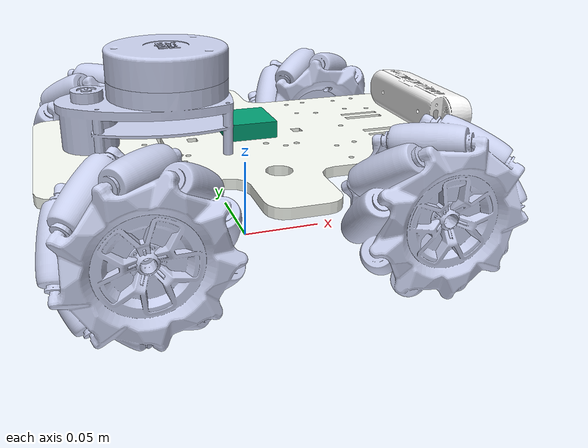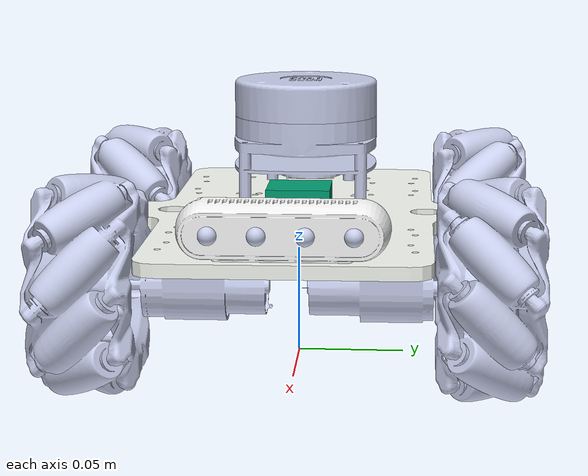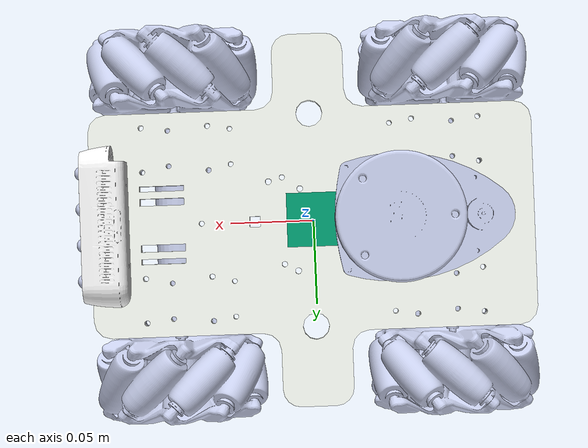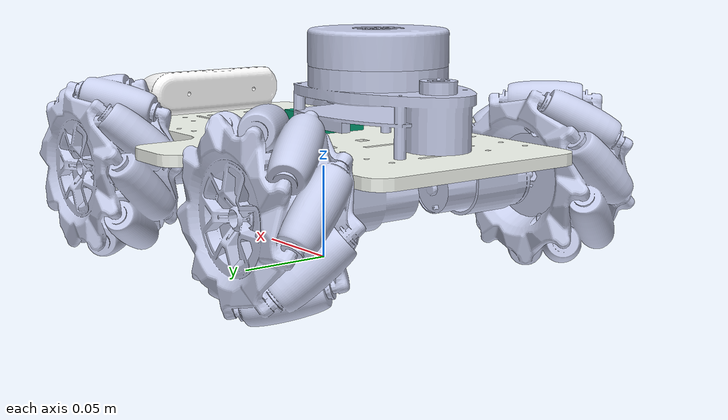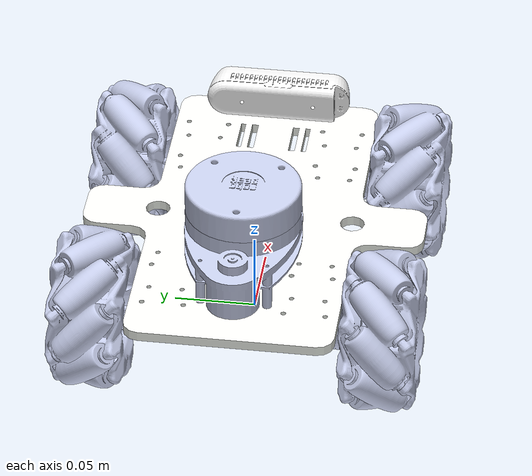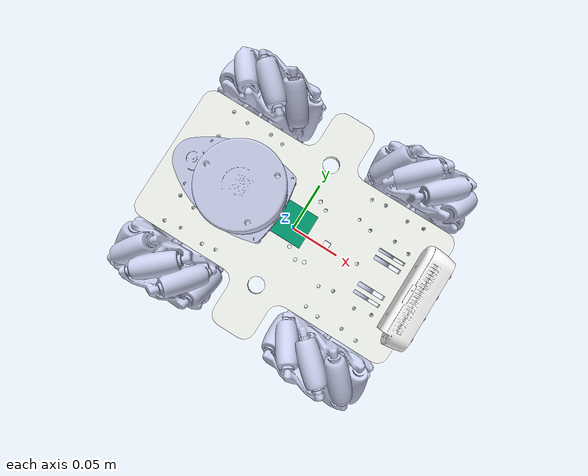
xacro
<?xml version="1.0"?>
<robot
  name="ros_gz_sim_demos" xmlns:xacro="http://www.ros.org/wiki/xacro" xmlns:gz="https://gazebosim.org/schema">
  <link
    name="base_link">
    <inertial>
      <origin
        xyz="2.5995E-16 -2.2595E-17 0.065"
        rpy="0 0 0" />
      <mass
        value="0.20049" />
      <inertia
        ixx="0.00037919"
        ixy="-2.2555E-08"
        ixz="3.6353E-21"
        iyy="0.00094675"
        iyz="-1.0379E-21"
        izz="0.0013247" />
    </inertial>
    <visual>
      <origin
        xyz="0 0 0"
        rpy="0 0 0" />
      <geometry>
        <mesh
          filename="file://$(find ros_gz_sim_demos)/meshes/base_link.STL" />
      </geometry>
      <material
        name="">
        <color
          rgba="0.98431 1 0.96863 1" />
      </material>
    </visual>
    <collision>
      <origin
        xyz="0 0 0"
        rpy="0 0 0" />
      <geometry>
        <mesh
          filename="file://$(find ros_gz_sim_demos)/meshes/base_link.STL" />
      </geometry>
    </collision>
  </link>
  <link
    name="FR_motor_link">
    <inertial>
      <origin
        xyz="-1.6207E-06 -0.00034658 0.012253"
        rpy="0 0 0" />
      <mass
        value="0.032794" />
      <inertia
        ixx="8.5969E-06"
        ixy="4.7838E-09"
        ixz="8.3408E-10"
        iyy="9.2163E-06"
        iyz="3.0417E-10"
        izz="3.9326E-06" />
    </inertial>
    <visual>
      <origin
        xyz="0 0 0"
        rpy="0 0 0" />
      <geometry>
        <mesh
          filename="file://$(find ros_gz_sim_demos)/meshes/FR_motor_link.STL" />
      </geometry>
      <material
        name="">
        <color
          rgba="0.79216 0.81961 0.93333 1" />
      </material>
    </visual>
    <collision>
      <origin
        xyz="0 0 0"
        rpy="0 0 0" />
      <geometry>
        <mesh
          filename="file://$(find ros_gz_sim_demos)/meshes/FR_motor_link.STL" />
      </geometry>
    </collision>
  </link>
  <joint
    name="FR_motor_joint"
    type="fixed">
    <origin
      xyz="0.078173 -0.0265 0.0485"
      rpy="-1.5708 0 3.1416" />
    <parent
      link="base_link" />
    <child
      link="FR_motor_link" />
    <axis
      xyz="0 0 0" />
  </joint>
  <link
    name="FR_wheel_link">
    <inertial>
      <origin
        xyz="-2.15121149793607E-06 -0.000778884301154747 -7.8700501722484E-07"
        rpy="0 0 0" />
      <mass
        value="1.02887407764315" />
      <inertia
        ixx="0.000177552284416299"
        ixy="4.58145230572043E-09"
        ixz="-2.28833532776001E-08"
        iyy="0.000223652024220651"
        iyz="-1.27688365680031E-08"
        izz="0.000177604921899001" />
    </inertial>
    <visual>
      <origin
        xyz="0 0 0"
        rpy="0 0 0" />
      <geometry>
        <mesh
          filename="file://$(find ros_gz_sim_demos)/meshes/FR_wheel_link.STL" />
      </geometry>
      <material
        name="">
        <color
          rgba="0.792156862745098 0.819607843137255 0.933333333333333 1" />
      </material>
    </visual>
    <collision>
      <origin
        xyz="0 0 0"
        rpy="0 0 0" />
      <geometry>
        <mesh
          filename="file://$(find ros_gz_sim_demos)/meshes/FR_wheel_link.STL" />
      </geometry>
    </collision>
  </link>
  <joint
    name="FR_wheel_joint"
    type="continuous">
    <origin
      xyz="0 0 0.0609"
      rpy="-1.5708 0 3.1416" />
    <parent
      link="FR_motor_link" />
    <child
      link="FR_wheel_link" />
    <axis
      xyz="0 1 0" />
  </joint>
  <link
    name="FL_motor_link">
    <inertial>
      <origin
        xyz="0.00034136 0.032975 -6.0995E-05"
        rpy="0 0 0" />
      <mass
        value="0.032794" />
      <inertia
        ixx="9.2053E-06"
        ixy="-5.8626E-10"
        ixz="-1.0559E-07"
        iyy="3.9326E-06"
        iyz="-4.0036E-10"
        izz="8.6079E-06" />
    </inertial>
    <visual>
      <origin
        xyz="0 0 0"
        rpy="0 0 0" />
      <geometry>
        <mesh
          filename="file://$(find ros_gz_sim_demos)/meshes/FL_motor_link.STL" />
      </geometry>
      <material
        name="">
        <color
          rgba="0.79216 0.81961 0.93333 1" />
      </material>
    </visual>
    <collision>
      <origin
        xyz="0 0 0"
        rpy="0 0 0" />
      <geometry>
        <mesh
          filename="file://$(find ros_gz_sim_demos)/meshes/FL_motor_link.STL" />
      </geometry>
    </collision>
  </link>
  <joint
    name="FL_motor_joint"
    type="fixed">
    <origin
      xyz="0.078173 0.0065004 0.0485"
      rpy="-3.1416 -1.3974 3.1416" />
    <parent
      link="base_link" />
    <child
      link="FL_motor_link" />
    <axis
      xyz="0 0 0" />
  </joint>
  <link
    name="FL_wheel_link">
    <inertial>
      <origin
        xyz="7.9501E-07 0.0007184 -2.2329E-06"
        rpy="0 0 0" />
      <mass
        value="1.0289" />
      <inertia
        ixx="0.00017761"
        ixy="-1.2854E-08"
        ixz="2.2054E-08"
        iyy="0.00022365"
        iyz="-4.461E-09"
        izz="0.00017755" />
    </inertial>
    <visual>
      <origin
        xyz="0 0 0"
        rpy="0 0 0" />
      <geometry>
        <mesh
          filename="file://$(find ros_gz_sim_demos)/meshes/FL_wheel_link.STL" />
      </geometry>
      <material
        name="">
        <color
          rgba="0.79216 0.81961 0.93333 1" />
      </material>
    </visual>
    <collision>
      <origin
        xyz="0 0 0"
        rpy="0 0 0" />
      <geometry>
        <mesh
          filename="file://$(find ros_gz_sim_demos)/meshes/FL_wheel_link.STL" />
      </geometry>
    </collision>
  </link>
  <joint
    name="FL_wheel_joint"
    type="continuous">
    <origin
      xyz="0 0.0809 0"
      rpy="-3.1416 1.3974 3.1416" />
    <parent
      link="FL_motor_link" />
    <child
      link="FL_wheel_link" />
    <axis
      xyz="0 1 0" />
  </joint>
  <link
    name="RR_motor_link">
    <inertial>
      <origin
        xyz="-8.0639E-07 -0.00034648 0.012253"
        rpy="0 0 0" />
      <mass
        value="0.032794" />
      <inertia
        ixx="8.5985E-06"
        ixy="-4.5827E-09"
        ixz="-5.8815E-11"
        iyy="9.2147E-06"
        iyz="2.1701E-10"
        izz="3.9326E-06" />
    </inertial>
    <visual>
      <origin
        xyz="0 0 0"
        rpy="0 0 0" />
      <geometry>
        <mesh
          filename="file://$(find ros_gz_sim_demos)/meshes/RR_motor_link.STL" />
      </geometry>
      <material
        name="">
        <color
          rgba="0.79216 0.81961 0.93333 1" />
      </material>
    </visual>
    <collision>
      <origin
        xyz="0 0 0"
        rpy="0 0 0" />
      <geometry>
        <mesh
          filename="file://$(find ros_gz_sim_demos)/meshes/RR_motor_link.STL" />
      </geometry>
    </collision>
  </link>
  <joint
    name="RR_motor_joint"
    type="fixed">
    <origin
      xyz="-0.076791 -0.0265 0.0485"
      rpy="-1.5708 0 3.1416" />
    <parent
      link="base_link" />
    <child
      link="RR_motor_link" />
    <axis
      xyz="0 0 0" />
  </joint>
  <link
    name="RR_wheel_link">
    <inertial>
      <origin
        xyz="2.06032802892164E-06 -0.000718375948724662 1.16001699753537E-06"
        rpy="0 0 0" />
      <mass
        value="1.02887819313697" />
      <inertia
        ixx="0.000177561248049544"
        ixy="6.56076243131578E-09"
        ixz="-2.87032020744272E-08"
        iyy="0.000223654624813431"
        iyz="-1.19458856170236E-08"
        izz="0.000177598691046392" />
    </inertial>
    <visual>
      <origin
        xyz="0 0 0"
        rpy="0 0 0" />
      <geometry>
        <mesh
          filename="file://$(find ros_gz_sim_demos)/meshes/RR_wheel_link.STL" />
      </geometry>
      <material
        name="">
        <color
          rgba="0.792156862745098 0.819607843137255 0.933333333333333 1" />
      </material>
    </visual>
    <collision>
      <origin
        xyz="0 0 0"
        rpy="0 0 0" />
      <geometry>
        <mesh
          filename="file://$(find ros_gz_sim_demos)/meshes/RR_wheel_link.STL" />
      </geometry>
    </collision>
  </link>
  <joint
    name="RR_wheel_joint"
    type="continuous">
    <origin
      xyz="0 0 0.0609"
      rpy="-1.5708 0 3.1416" />
    <parent
      link="RR_motor_link" />
    <child
      link="RR_wheel_link" />
    <axis
      xyz="0 1 0" />
  </joint>
  <link
    name="RL_motor_link">
    <inertial>
      <origin
        xyz="0.00011663 0.032975 -0.00032625"
        rpy="0 0 0" />
      <mass
        value="0.032794" />
      <inertia
        ixx="8.669E-06"
        ixy="-9.0817E-10"
        ixz="-1.9491E-07"
        iyy="3.9326E-06"
        iyz="-1.2762E-10"
        izz="9.1442E-06" />
    </inertial>
    <visual>
      <origin
        xyz="0 0 0"
        rpy="0 0 0" />
      <geometry>
        <mesh
          filename="file://$(find ros_gz_sim_demos)/meshes/RL_motor_link.STL" />
      </geometry>
      <material
        name="">
        <color
          rgba="0.79216 0.81961 0.93333 1" />
      </material>
    </visual>
    <collision>
      <origin
        xyz="0 0 0"
        rpy="0 0 0" />
      <geometry>
        <mesh
          filename="file://$(find ros_gz_sim_demos)/meshes/RL_motor_link.STL" />
      </geometry>
    </collision>
  </link>
  <joint
    name="RL_motor_joint"
    type="fixed">
    <origin
      xyz="-0.077431 0.0065004 0.0485"
      rpy="-3.1416 -0.33846 3.1416" />
    <parent
      link="base_link" />
    <child
      link="RL_motor_link" />
    <axis
      xyz="0 0 0" />
  </joint>
  <link
    name="RL_wheel_link">
    <inertial>
      <origin
        xyz="8.6753423503283E-07 0.00077890357753034 2.12968738896174E-06"
        rpy="0 0 0" />
      <mass
        value="1.02887426161357" />
      <inertia
        ixx="0.000177603523734665"
        ixy="-1.26387449852315E-08"
        ixz="-2.44516352788597E-08"
        iyy="0.000223652148082736"
        iyz="4.94192389229699E-09"
        izz="0.000177553834650518" />
    </inertial>
    <visual>
      <origin
        xyz="0 0 0"
        rpy="0 0 0" />
      <geometry>
        <mesh
          filename="file://$(find ros_gz_sim_demos)/meshes/RL_wheel_link.STL" />
      </geometry>
      <material
        name="">
        <color
          rgba="0.792156862745098 0.819607843137255 0.933333333333333 1" />
      </material>
    </visual>
    <collision>
      <origin
        xyz="0 0 0"
        rpy="0 0 0" />
      <geometry>
        <mesh
          filename="file://$(find ros_gz_sim_demos)/meshes/RL_wheel_link.STL" />
      </geometry>
    </collision>
  </link>
  <joint
    name="RL_wheel_joint"
    type="continuous">
    <origin
      xyz="0 0.0809 0"
      rpy="-3.1416 0.33846 3.1416" />
    <parent
      link="RL_motor_link" />
    <child
      link="RL_wheel_link" />
    <axis
      xyz="0 1 0" />
  </joint>
  <link
    name="base_lidar_link">
    <inertial>
      <origin
        xyz="0.0011227 -2.8129E-05 -0.012724"
        rpy="0 0 0" />
      <mass
        value="1.2536" />
      <inertia
        ixx="0.00011295"
        ixy="-4.0977E-08"
        ixz="1.1197E-05"
        iyy="0.00076334"
        iyz="2.0917E-07"
        izz="0.00075689" />
    </inertial>
    <visual>
      <origin
        xyz="0 0 0"
        rpy="0 0 0" />
      <geometry>
        <mesh
          filename="file://$(find ros_gz_sim_demos)/meshes/base_lidar_link.STL" />
      </geometry>
      <material
        name="">
        <color
          rgba="0.79216 0.81961 0.93333 1" />
      </material>
    </visual>
    <collision>
      <origin
        xyz="0 0 0"
        rpy="0 0 0" />
      <geometry>
        <mesh
          filename="file://$(find ros_gz_sim_demos)/meshes/base_lidar_link.STL" />
      </geometry>
    </collision>
  </link>
  <joint
    name="base_lidar_joint"
    type="fixed">
    <origin
      xyz="-0.060644 0.00050036 0.0926"
      rpy="1.5708 0 3.1416" />
    <parent
      link="base_link" />
    <child
      link="base_lidar_link" />
    <axis
      xyz="0 0 0" />
  </joint>
  <link
    name="lidar_sensor_link">
    <inertial>
      <origin
        xyz="-1.05326570642925E-05 1.25297858374267E-07 0.000929787024683645"
        rpy="0 0 0" />
      <mass
        value="0.538618285868772" />
      <inertia
        ixx="0.000179538926934653"
        ixy="-1.89476776035726E-09"
        ixz="3.76502620381661E-08"
        iyy="0.000179131047073137"
        iyz="-5.28423561346764E-10"
        izz="0.000329632810159893" />
    </inertial>
    <visual>
      <origin
        xyz="0 0 0"
        rpy="0 0 0" />
      <geometry>
        <mesh
          filename="file://$(find ros_gz_sim_demos)/meshes/lidar_sensor_link.STL" />
      </geometry>
      <material
        name="">
        <color
          rgba="0.792156862745098 0.819607843137255 0.933333333333333 1" />
      </material>
    </visual>
    <collision>
      <origin
        xyz="0 0 0"
        rpy="0 0 0" />
      <geometry>
        <mesh
          filename="file://$(find ros_gz_sim_demos)/meshes/lidar_sensor_link.STL" />
      </geometry>
    </collision>
  </link>
  <joint
    name="lidar_sensor_joint"
    type="fixed">
    <origin
      xyz="-0.01425 0.02305 0"
      rpy="1.5707963267949 0 3.14159265358979" />
    <parent
      link="base_lidar_link" />
    <child
      link="lidar_sensor_link" />
    <axis
      xyz="0 0 1" />
  </joint>
  <link
    name="base_camera_link">
    <inertial>
      <origin
        xyz="0 0 0"
        rpy="0 0 0" />
      <mass
        value="0.018" />
      <inertia
        ixx="0"
        ixy="0"
        ixz="0"
        iyy="0"
        iyz="0"
        izz="0" />
    </inertial>
    <visual>
      <origin
        xyz="0 0 0"
        rpy="0 0 0" />
      <geometry>
        <mesh
          filename="file://$(find ros_gz_sim_demos)/meshes/base_camera_link.STL" />
      </geometry>
      <material
        name="">
        <color
          rgba="1 1 1 1" />
      </material>
    </visual>
    <collision>
      <origin
        xyz="0 0 0"
        rpy="0 0 0" />
      <geometry>
        <mesh
          filename="file://$(find ros_gz_sim_demos)/meshes/base_camera_link.STL" />
      </geometry>
    </collision>
  </link>
  <joint
    name="base_camera_joint"
    type="fixed">
    <origin
      xyz="0.12859 0 0.0805"
      rpy="1.5708 0 1.5708" />
    <parent
      link="base_link" />
    <child
      link="base_camera_link" />
    <axis
      xyz="0 0 0" />
  </joint>
  <link
    name="right_imager_link">
    <inertial>
      <origin
        xyz="0 0 9E-05"
        rpy="0 0 0" />
      <mass
        value="0.00020944" />
      <inertia
        ixx="1.1163E-09"
        ixy="-9.5643E-25"
        ixz="-1.1316E-25"
        iyy="1.1163E-09"
        iyz="3.6914E-26"
        izz="1.4611E-09" />
    </inertial>
    <visual>
      <origin
        xyz="0 0 0"
        rpy="0 0 0" />
      <geometry>
        <mesh
          filename="file://$(find ros_gz_sim_demos)/meshes/right_imager_link.STL" />
      </geometry>
      <material
        name="">
        <color
          rgba="0.79216 0.81961 0.93333 1" />
      </material>
    </visual>
    <collision>
      <origin
        xyz="0 0 0"
        rpy="0 0 0" />
      <geometry>
        <mesh
          filename="file://$(find ros_gz_sim_demos)/meshes/right_imager_link.STL" />
      </geometry>
    </collision>
  </link>
  <joint
    name="right_imager_joint"
    type="fixed">
    <origin
      xyz="-0.03 0 0"
      rpy="0 0 0" />
    <parent
      link="base_camera_link" />
    <child
      link="right_imager_link" />
    <axis
      xyz="0 0 0" />
  </joint>
  <link
    name="IR_projector_link">
    <inertial>
      <origin
        xyz="6.9389E-18 -1.3878E-17 9E-05"
        rpy="0 0 0" />
      <mass
        value="0.00020944" />
      <inertia
        ixx="1.1163E-09"
        ixy="-8.7888E-25"
        ixz="-1.4421E-25"
        iyy="1.1163E-09"
        iyz="4.1632E-25"
        izz="1.4611E-09" />
    </inertial>
    <visual>
      <origin
        xyz="0 0 0"
        rpy="0 0 0" />
      <geometry>
        <mesh
          filename="file://$(find ros_gz_sim_demos)/meshes/IR_projector_link.STL" />
      </geometry>
      <material
        name="">
        <color
          rgba="0.79216 0.81961 0.93333 1" />
      </material>
    </visual>
    <collision>
      <origin
        xyz="0 0 0"
        rpy="0 0 0" />
      <geometry>
        <mesh
          filename="file://$(find ros_gz_sim_demos)/meshes/IR_projector_link.STL" />
      </geometry>
    </collision>
  </link>
  <joint
    name="IR_projector_joint"
    type="fixed">
    <origin
      xyz="-0.0099996 0 0"
      rpy="0 0 -0.50287" />
    <parent
      link="base_camera_link" />
    <child
      link="IR_projector_link" />
    <axis
      xyz="0 0 0" />
  </joint>
  <link
    name="left_imager_link">
    <inertial>
      <origin
        xyz="0 0 9E-05"
        rpy="0 0 0" />
      <mass
        value="0.00020944" />
      <inertia
        ixx="1.1163E-09"
        ixy="-1.2925E-24"
        ixz="-2.0674E-25"
        iyy="1.1163E-09"
        iyz="6.3568E-25"
        izz="1.4611E-09" />
    </inertial>
    <visual>
      <origin
        xyz="0 0 0"
        rpy="0 0 0" />
      <geometry>
        <mesh
          filename="file://$(find ros_gz_sim_demos)/meshes/left_imager_link.STL" />
      </geometry>
      <material
        name="">
        <color
          rgba="0.79216 0.81961 0.93333 1" />
      </material>
    </visual>
    <collision>
      <origin
        xyz="0 0 0"
        rpy="0 0 0" />
      <geometry>
        <mesh
          filename="file://$(find ros_gz_sim_demos)/meshes/left_imager_link.STL" />
      </geometry>
    </collision>
  </link>
  <joint
    name="left_imager_joint"
    type="fixed">
    <origin
      xyz="0.01 0 0"
      rpy="0 0 1.1033" />
    <parent
      link="base_camera_link" />
    <child
      link="left_imager_link" />
    <axis
      xyz="0 0 0" />
  </joint>
  <link
    name="RGB_module_link">
    <inertial>
      <origin
        xyz="-1.7347E-17 0 9E-05"
        rpy="0 0 0" />
      <mass
        value="0.00020944" />
      <inertia
        ixx="1.1163E-09"
        ixy="3.5543E-25"
        ixz="-2.2824E-25"
        iyy="1.1163E-09"
        iyz="6.0663E-26"
        izz="1.4611E-09" />
    </inertial>
    <visual>
      <origin
        xyz="0 0 0"
        rpy="0 0 0" />
      <geometry>
        <mesh
          filename="file://$(find ros_gz_sim_demos)/meshes/RGB_module_link.STL" />
      </geometry>
      <material
        name="">
        <color
          rgba="0.79216 0.81961 0.93333 1" />
      </material>
    </visual>
    <collision>
      <origin
        xyz="0 0 0"
        rpy="0 0 0" />
      <geometry>
        <mesh
          filename="file://$(find ros_gz_sim_demos)/meshes/RGB_module_link.STL" />
      </geometry>
    </collision>
  </link>
  <joint
    name="RGB_module_joint"
    type="fixed">
    <origin
      xyz="0.03 0 0"
      rpy="0 0 -0.047605" />
    <parent
      link="base_camera_link" />
    <child
      link="RGB_module_link" />
    <axis
      xyz="0 0 0" />
  </joint>

  <xacro:include filename="$(find ros_gz_sim_demos)/urdf/control/mech_mobile.gazebo" />
  <xacro:include filename="$(find ros_gz_sim_demos)/urdf/sensors/imu_gazebo.xacro" />
  <xacro:include filename="$(find ros_gz_sim_demos)/urdf/sensors/lidar.gazebo" />
  <xacro:include filename="$(find ros_gz_sim_demos)/urdf/sensors/rgbd_camera.gazebo" />

  <gazebo reference="FL_wheel_link">
    <collision>
      <surface>
        <friction>
          <ode>
            <mu>1.5</mu>
            <mu2>0.0</mu2>
            <fdir1 gz:expressed_in="base_link">1 -1 0</fdir1>
          </ode>
        </friction>
      </surface>
    </collision>
  </gazebo>

  <gazebo reference="FR_wheel_link">
    <collision>
      <surface>
        <friction>
          <ode>
            <mu>1.5</mu>
            <mu2>0.0</mu2>
            <fdir1 gz:expressed_in="base_link">1 1 0</fdir1>
          </ode>
        </friction>
      </surface>
    </collision>
  </gazebo>

  <gazebo reference="RL_wheel_link">
    <collision>
      <surface>
        <friction>
          <ode>
            <mu>1.5</mu>
            <mu2>0.0</mu2>
            <fdir1 gz:expressed_in="base_link">1 1 0</fdir1>
          </ode>
        </friction>
      </surface>
    </collision>
  </gazebo>

  <gazebo reference="RR_wheel_link">
    <collision>
      <surface>
        <friction>
          <ode>
            <mu>1.5</mu>
            <mu2>0.0</mu2>
            <fdir1 gz:expressed_in="base_link">1 -1 0</fdir1>
          </ode>
        </friction>
      </surface>
    </collision>
  </gazebo>

  <gazebo reference="base_link">
    <mu1>0.000002</mu1>
    <mu2>0.000002</mu2>
  </gazebo>

    <!-- for general camera -->
  <joint type="fixed" name="camera_optical_joint" >
    <origin xyz="0 0 1" rpy="-1.5708 -1.5708 0" />
    <child link ="camera_link_optical" />
    <parent link ="base_camera_link" />
  </joint>

  <link name="camera_link_optical">
  </link>

  <!-- for rgbd_camera -->
  <joint type="fixed" name="rgbd_camera_optical_joint" >
    <origin xyz="0 0 0" rpy="-1.5708 -1.5708 0" />
    <child link ="rgbd_camera_link_optical" />
    <parent link ="base_camera_link" />
  </joint>

  <link name="rgbd_camera_link_optical">
  </link>

  <!-- for imu sensor -->
  <link name='imu_link'>
    <pose>0 0 0 0 0 0</pose>
    <inertial>
      <mass value="0.1"/>
      <origin xyz="0 0 0" rpy="0 0 0"/>
      <inertia
          ixx="1e-6" ixy="0" ixz="0"
          iyy="1e-6" iyz="0"
          izz="1e-6" />
    </inertial>

    <collision name='collision'>
      <origin xyz="0 0 0" rpy="0 0 0"/>
      <geometry>
        <box size=".03 .03 .01"/>
      </geometry>
    </collision>

    <visual name='camera_link_visual'>
      <origin xyz="0 0 0" rpy="0 0 0"/>
      <geometry>
        <box size=".03 .03 .01"/>
      </geometry>
    </visual>

  </link>

  <joint type="fixed" name="imu_joint">
    <origin xyz="0 0 0.075" rpy="0 0 0"/>
    <child link="imu_link"/>
    <parent link="base_link"/>
    <axis xyz="0 1 0" />
  </joint>

</robot>
